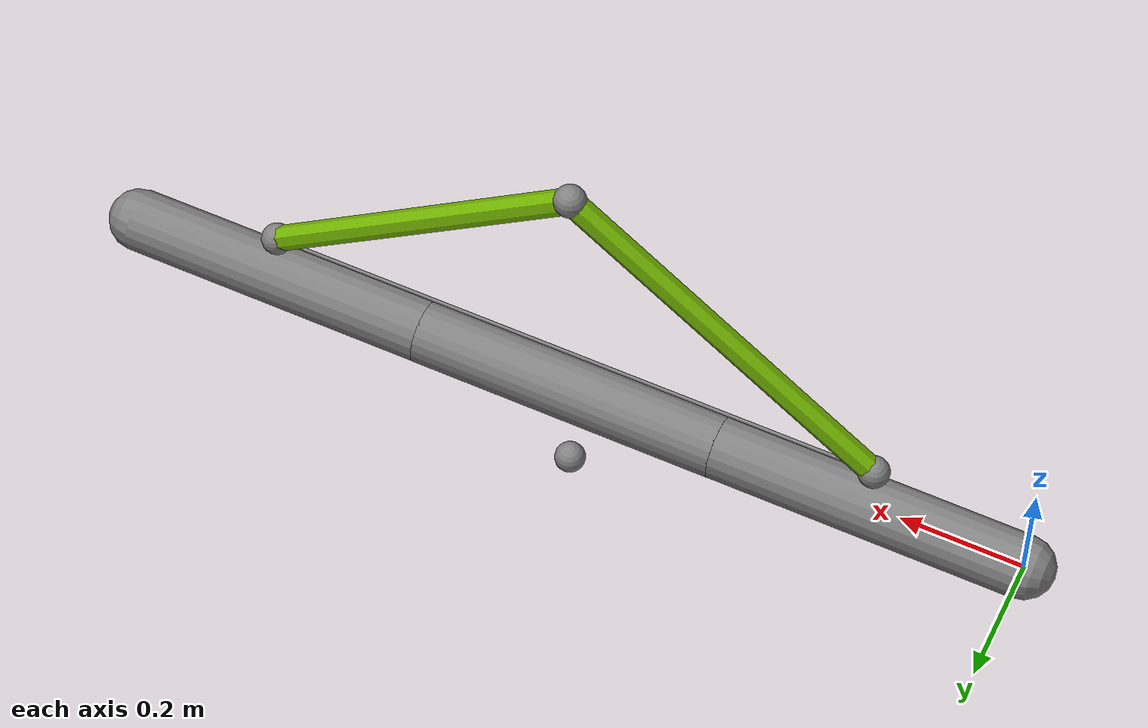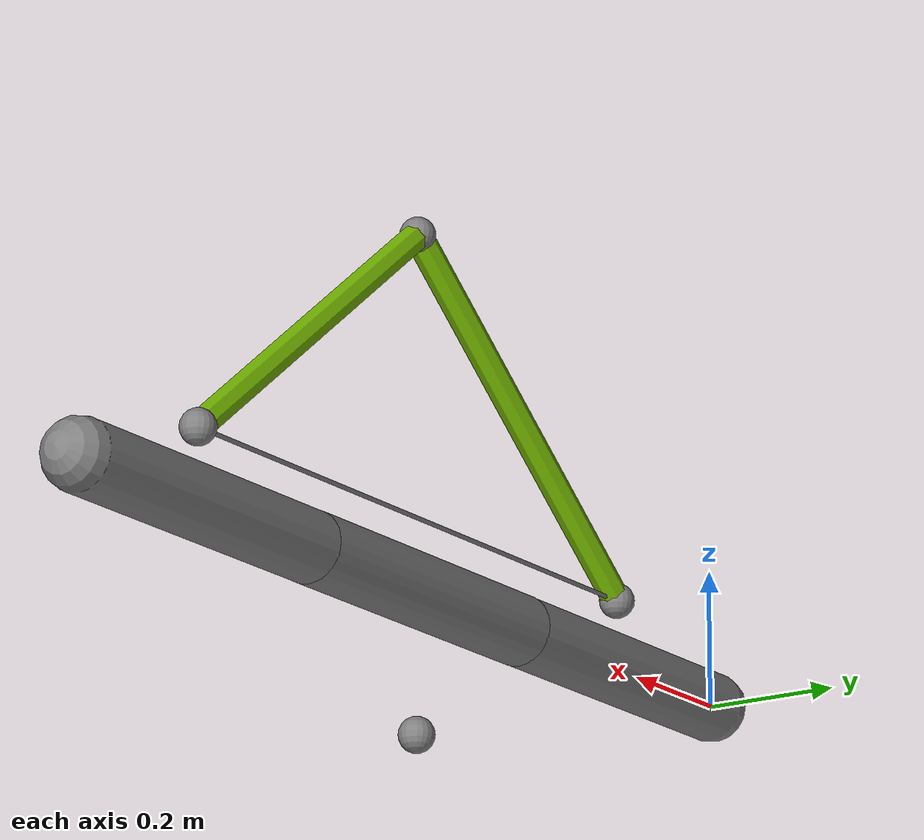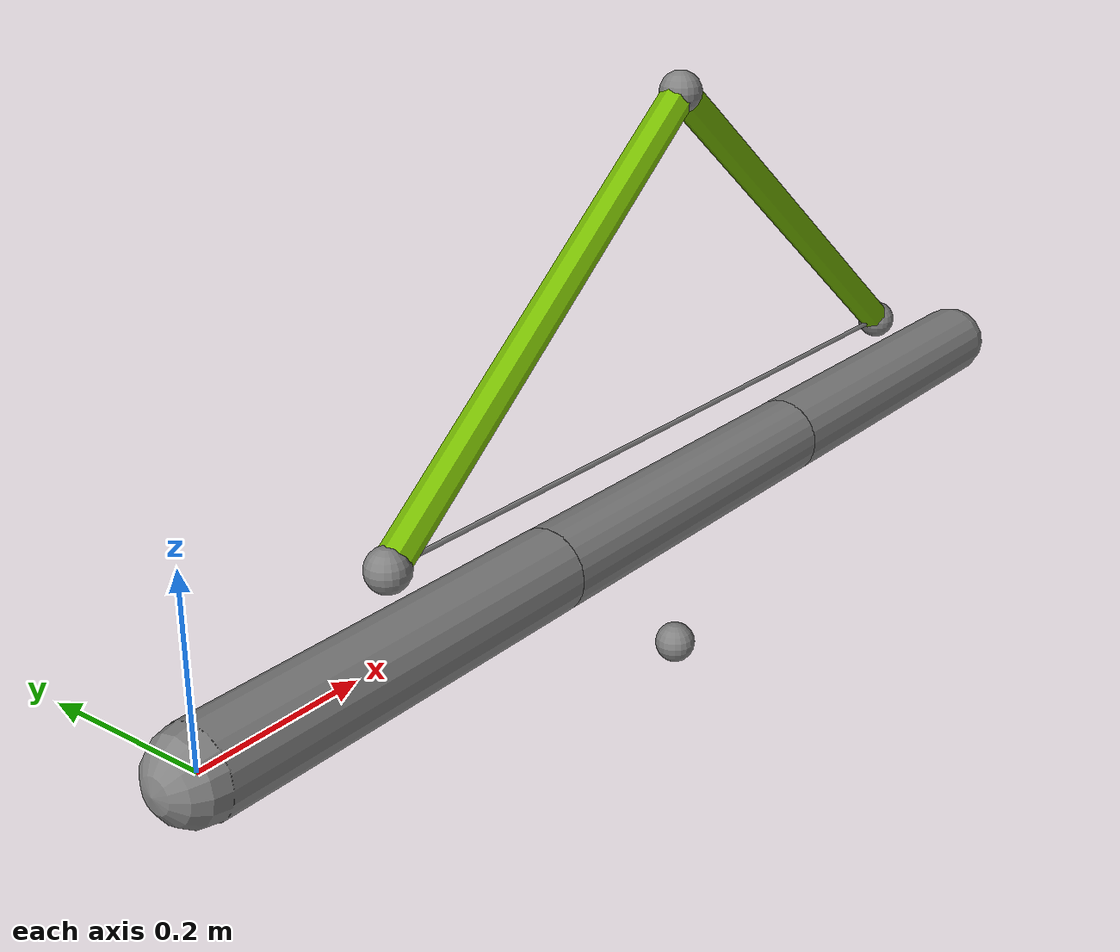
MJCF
<mujoco model="tendon_spatial_attributes">
  <worldbody>
    <body name="body0">
      <joint name="joint0" type="hinge" axis="0 1 0"/>
      <geom type="capsule" size="0.05 0.5" fromto="0 0 0 0.5 0 0"/>
      <site name="site0" pos="0.25 0 0.1" size="0.025"/>
      <body name="body1" pos="0.5 0 0">
        <joint name="joint1" type="hinge" axis="0 1 0"/>
        <geom name="geom1" type="cylinder" size="0.05 0.5" fromto="0 0 0 0.5 0 0"/>
        <site name="site1" pos="0.25 0 0.5" size="0.025"/>
        <site name="side1" pos="0.25 0 -0.2" size="0.025"/>
        <body name="body2" pos="0.5 0 0">
          <joint name="joint2" type="hinge" axis="0 1 0"/>
          <geom type="capsule" size="0.05 0.5" fromto="0 0 0 0.5 0 0"/>
          <site name="site2" pos="0.25 0 0.1" size="0.025"/>
        </body>
      </body>
    </body>
  </worldbody>
  <tendon>
    <spatial name="custom_tendon"
             actuatorfrclimited="false"
             actuatorfrcrange="0.1 0.2"
             damping="0.4"
             frictionloss="0.5"
             group="1"
             limited="false"
             margin="0.6"
             range="0.7 0.8"
             rgba="0.463 0.725 0 1"
             width="0.02"
             solimpfriction="0.95 0.96 0.002 0.6 3"
             solimplimit="0.96 0.97 0.003 0.7 4"
             solreffriction="0.03 1.1"
             solreflimit="0.04 1.2"
             springlength="0.95 0.99"
             stiffness="1.1">
        <site site="site0"/>
        <geom geom="geom1" sidesite="side1"/>
        <site site="site1"/>
        <site site="site2"/>
    </spatial>
    <spatial name="default_tendon"
             actuatorfrclimited="auto"
             actuatorfrcrange="0.0 0.0"
             armature="0.0"
             damping="0.0"
             frictionloss="0.0"
             group="0"
             limited="auto"
             margin="0.0"
             range="0.0 0.0"
             solimpfriction="0.9 0.95 0.001 0.5 2"
             solimplimit="0.9 0.95 0.001 0.5 2"
             solreffriction="0.02 1"
             solreflimit="0.02 1"
             springlength="-1 -1"
             stiffness="0.0">
        <site site="site0"/>
        <site site="site2"/>
    </spatial>
  </tendon>
</mujoco>
